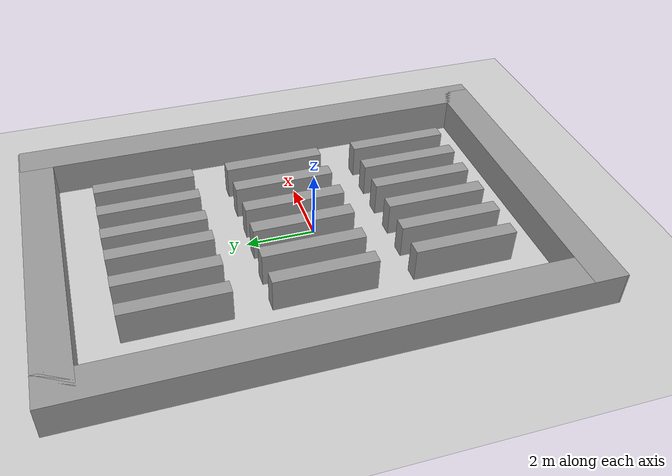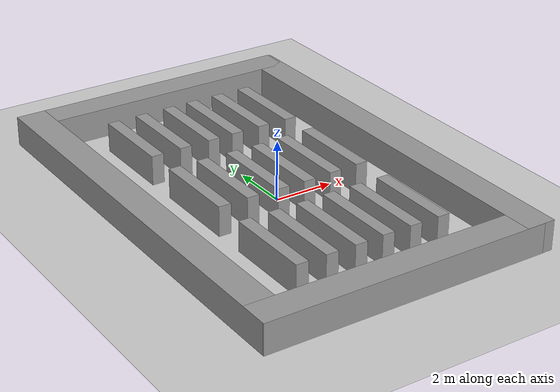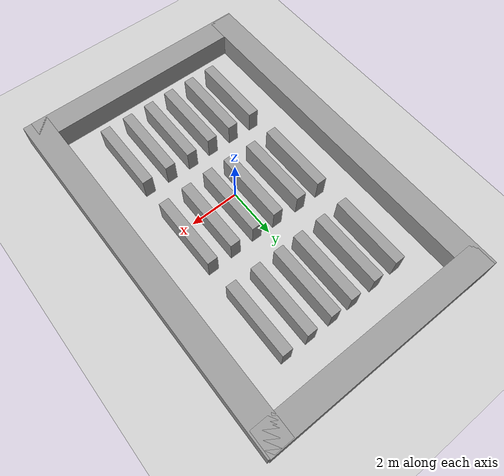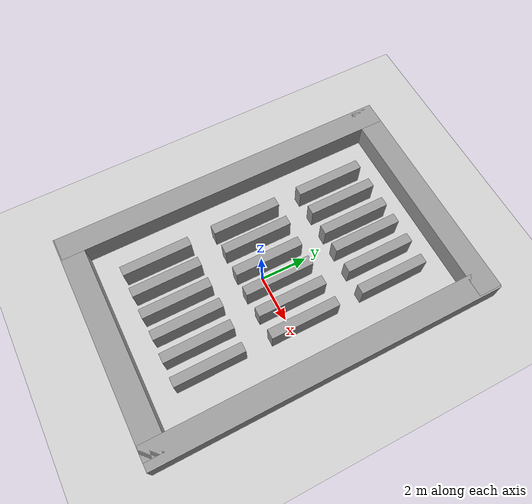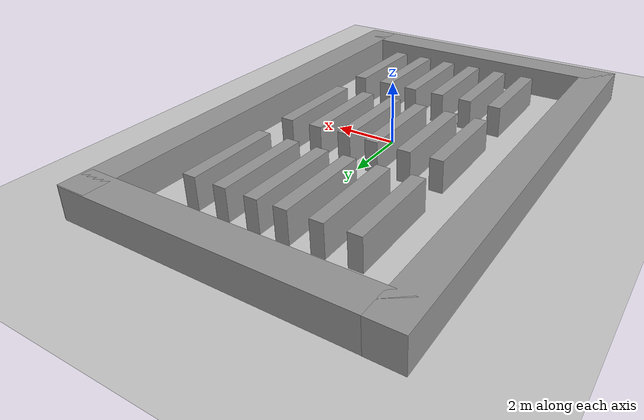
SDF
<sdf version="1.6">
 <world name="default">
  <light name="sun" type="directional">
   <pose>0 0 10 0 -0 0</pose>
   <diffuse>0.8 0.8 0.8 1</diffuse>
   <specular>0.2 0.2 0.2 1</specular>
   <attenuation>
    <range>1000</range>
    <constant>0.9</constant>
    <linear>0.01</linear>
    <quadratic>0.001</quadratic>
   </attenuation>
   <direction>-0.5 0.1 -0.9</direction>
  </light>
  <model name="ground_plane">
   <static>1</static>
   <link name="link">
    <collision name="collision">
     <geometry><plane><normal>0 0 1</normal><size>100 100</size></plane></geometry>
     <surface>
      <contact><collide_bitmask>65535</collide_bitmask></contact>
      <friction><ode><mu>100</mu><mu2>50</mu2></ode></friction>
     </surface>
    </collision>
    <visual name="visual">
     <cast_shadows>0</cast_shadows>
     <geometry><plane><normal>0 0 1</normal><size>100 100</size></plane></geometry>
     <material>
      <script><uri>file://media/materials/scripts/gazebo.material</uri><name>Gazebo/Grey</name></script>
     </material>
    </visual>
   </link>
  </model>
  <gravity>0 0 -9.8</gravity>
  <magnetic_field>6e-06 2.3e-05 -4.2e-05</magnetic_field>
  <atmosphere type="adiabatic"/>
  <physics name="default_physics" default="0" type="ode">
   <max_step_size>0.001</max_step_size>
   <real_time_factor>1</real_time_factor>
   <real_time_update_rate>1000</real_time_update_rate>
  </physics>
  <scene><ambient>0.4 0.4 0.4 1</ambient><background>0.7 0.7 0.7 1</background><shadows>1</shadows></scene>
  <audio><device>default</device></audio>
  <spherical_coordinates>
   <surface_model>EARTH_WGS84</surface_model>
   <latitude_deg>0</latitude_deg>
   <longitude_deg>0</longitude_deg>
   <elevation>0</elevation>
   <heading_deg>0</heading_deg>
  </spherical_coordinates>
  <model name="unit_box_clone">
   <pose>4.47856 0.511578 0.5 0 -0 0</pose>
   <link name="unit_box::link">
    <inertial>
     <mass>1</mass>
     <inertia>
      <ixx>0.166667</ixx>
      <ixy>0</ixy>
      <ixz>0</ixz>
      <iyy>0.166667</iyy>
      <iyz>0</iyz>
      <izz>0.166667</izz>
     </inertia>
    </inertial>
    <collision name="collision"><geometry><box><size>1 14.9332 1</size></box></geometry></collision>
    <visual name="visual">
     <geometry><box><size>1 14.9332 1</size></box></geometry>
     <material>
      <script><name>Gazebo/Grey</name><uri>file://media/materials/scripts/gazebo.material</uri></script>
     </material>
    </visual>
    <kinematic>1</kinematic>
   </link>
  </model>
  <model name="unit_box_clone_0">
   <pose>-0.204943 -6.46054 0.5 0 0 -1.57123</pose>
   <link name="unit_box::link">
    <inertial>
     <mass>1</mass>
     <inertia>
      <ixx>0.166667</ixx>
      <ixy>0</ixy>
      <ixz>0</ixz>
      <iyy>0.166667</iyy>
      <iyz>0</iyz>
      <izz>0.166667</izz>
     </inertia>
    </inertial>
    <collision name="collision"><geometry><box><size>1 9.65043 1</size></box></geometry></collision>
    <visual name="visual">
     <geometry><box><size>1 9.65043 1</size></box></geometry>
     <material>
      <script><name>Gazebo/Grey</name><uri>file://media/materials/scripts/gazebo.material</uri></script>
     </material>
    </visual>
    <kinematic>1</kinematic>
   </link>
  </model>
  <model name="unit_box_clone_0_clone">
   <pose>-0.016399 7.51137 0.5 0 0 -1.57123</pose>
   <link name="unit_box::link">
    <inertial>
     <mass>1</mass>
     <inertia>
      <ixx>0.166667</ixx>
      <ixy>0</ixy>
      <ixz>0</ixz>
      <iyy>0.166667</iyy>
      <iyz>0</iyz>
      <izz>0.166667</izz>
     </inertia>
    </inertial>
    <collision name="collision"><geometry><box><size>1 9.84822 1</size></box></geometry></collision>
    <visual name="visual">
     <geometry><box><size>1 9.84822 1</size></box></geometry>
     <material>
      <script><name>Gazebo/Grey</name><uri>file://media/materials/scripts/gazebo.material</uri></script>
     </material>
    </visual>
    <kinematic>1</kinematic>
   </link>
  </model>
  <light name="user_point_light_0" type="point">
   <pose>-0.069545 0.103003 1 0 -0 0</pose>
   <diffuse>0.5 0.5 0.5 1</diffuse>
   <specular>0.1 0.1 0.1 1</specular>
   <attenuation>
    <range>20</range>
    <constant>0.5</constant>
    <linear>0.01</linear>
    <quadratic>0.001</quadratic>
   </attenuation>
   <cast_shadows>0</cast_shadows>
   <direction>0 0 -1</direction>
  </light>
  <model name="unit_box_0_clone">
   <pose>-1.48432 4.47491 0.5 0 -0 0</pose>
   <link name="unit_box_0::link">
    <inertial>
     <mass>1</mass>
     <inertia>
      <ixx>0.166667</ixx>
      <ixy>0</ixy>
      <ixz>0</ixz>
      <iyy>0.166667</iyy>
      <iyz>0</iyz>
      <izz>0.166667</izz>
     </inertia>
    </inertial>
    <collision name="collision"><geometry><box><size>0.417415 2.94926 1</size></box></geometry></collision>
    <visual name="visual">
     <geometry><box><size>0.417415 2.94926 1</size></box></geometry>
     <material>
      <script><name>Gazebo/Grey</name><uri>file://media/materials/scripts/gazebo.material</uri></script>
     </material>
    </visual>
    <kinematic>1</kinematic>
   </link>
  </model>
  <model name="unit_box_0_clone_0">
   <pose>-0.436566 4.48288 0.5 0 -0 0</pose>
   <link name="unit_box_0::link">
    <inertial>
     <mass>1</mass>
     <inertia>
      <ixx>0.166667</ixx>
      <ixy>0</ixy>
      <ixz>0</ixz>
      <iyy>0.166667</iyy>
      <iyz>0</iyz>
      <izz>0.166667</izz>
     </inertia>
    </inertial>
    <collision name="collision"><geometry><box><size>0.417415 2.94926 1</size></box></geometry></collision>
    <visual name="visual">
     <geometry><box><size>0.417415 2.94926 1</size></box></geometry>
     <material>
      <script><name>Gazebo/Grey</name><uri>file://media/materials/scripts/gazebo.material</uri></script>
     </material>
    </visual>
    <kinematic>1</kinematic>
   </link>
  </model>
  <model name="unit_box_0_clone_1">
   <pose>0.463404 4.49446 0.5 0 -0 0</pose>
   <link name="unit_box_0::link">
    <inertial>
     <mass>1</mass>
     <inertia>
      <ixx>0.166667</ixx>
      <ixy>0</ixy>
      <ixz>0</ixz>
      <iyy>0.166667</iyy>
      <iyz>0</iyz>
      <izz>0.166667</izz>
     </inertia>
    </inertial>
    <collision name="collision"><geometry><box><size>0.417415 2.94926 1</size></box></geometry></collision>
    <visual name="visual">
     <geometry><box><size>0.417415 2.94926 1</size></box></geometry>
     <material>
      <script><name>Gazebo/Grey</name><uri>file://media/materials/scripts/gazebo.material</uri></script>
     </material>
    </visual>
    <kinematic>1</kinematic>
   </link>
  </model>
  <model name="unit_box_0_clone_2">
   <pose>1.47766 4.48987 0.5 0 -0 0</pose>
   <link name="unit_box_0::link">
    <inertial>
     <mass>1</mass>
     <inertia>
      <ixx>0.166667</ixx>
      <ixy>0</ixy>
      <ixz>0</ixz>
      <iyy>0.166667</iyy>
      <iyz>0</iyz>
      <izz>0.166667</izz>
     </inertia>
    </inertial>
    <collision name="collision"><geometry><box><size>0.417415 2.94926 1</size></box></geometry></collision>
    <visual name="visual">
     <geometry><box><size>0.417415 2.94926 1</size></box></geometry>
     <material>
      <script><name>Gazebo/Grey</name><uri>file://media/materials/scripts/gazebo.material</uri></script>
     </material>
    </visual>
    <kinematic>1</kinematic>
   </link>
  </model>
  <model name="unit_box_0_clone_3">
   <pose>2.52178 4.48688 0.5 0 -0 0</pose>
   <link name="unit_box_0::link">
    <inertial>
     <mass>1</mass>
     <inertia>
      <ixx>0.166667</ixx>
      <ixy>0</ixy>
      <ixz>0</ixz>
      <iyy>0.166667</iyy>
      <iyz>0</iyz>
      <izz>0.166667</izz>
     </inertia>
    </inertial>
    <collision name="collision"><geometry><box><size>0.417415 2.94926 1</size></box></geometry></collision>
    <visual name="visual">
     <geometry><box><size>0.417415 2.94926 1</size></box></geometry>
     <material>
      <script><name>Gazebo/Grey</name><uri>file://media/materials/scripts/gazebo.material</uri></script>
     </material>
    </visual>
    <kinematic>1</kinematic>
   </link>
  </model>
  <model name="unit_box_0_clone_3_clone">
   <pose>-2.48328 -3.51687 0.5 0 -0 0</pose>
   <link name="unit_box_0::link">
    <inertial>
     <mass>1</mass>
     <inertia>
      <ixx>0.166667</ixx>
      <ixy>0</ixy>
      <ixz>0</ixz>
      <iyy>0.166667</iyy>
      <iyz>0</iyz>
      <izz>0.166667</izz>
     </inertia>
    </inertial>
    <collision name="collision"><geometry><box><size>0.417415 2.94926 1</size></box></geometry></collision>
    <visual name="visual">
     <geometry><box><size>0.417415 2.94926 1</size></box></geometry>
     <material>
      <script><name>Gazebo/Grey</name><uri>file://media/materials/scripts/gazebo.material</uri></script>
     </material>
    </visual>
    <kinematic>1</kinematic>
   </link>
  </model>
  <model name="unit_box_0_clone_3_clone_0">
   <pose>-1.4736 -3.5228 0.5 0 -0 0</pose>
   <link name="unit_box_0::link">
    <inertial>
     <mass>1</mass>
     <inertia>
      <ixx>0.166667</ixx>
      <ixy>0</ixy>
      <ixz>0</ixz>
      <iyy>0.166667</iyy>
      <iyz>0</iyz>
      <izz>0.166667</izz>
     </inertia>
    </inertial>
    <collision name="collision"><geometry><box><size>0.417415 2.94926 1</size></box></geometry></collision>
    <visual name="visual">
     <geometry><box><size>0.417415 2.94926 1</size></box></geometry>
     <material>
      <script><name>Gazebo/Grey</name><uri>file://media/materials/scripts/gazebo.material</uri></script>
     </material>
    </visual>
    <kinematic>1</kinematic>
   </link>
  </model>
  <model name="unit_box_0_clone_3_clone_1">
   <pose>-0.477682 -3.52925 0.5 0 -0 0</pose>
   <link name="unit_box_0::link">
    <inertial>
     <mass>1</mass>
     <inertia>
      <ixx>0.166667</ixx>
      <ixy>0</ixy>
      <ixz>0</ixz>
      <iyy>0.166667</iyy>
      <iyz>0</iyz>
      <izz>0.166667</izz>
     </inertia>
    </inertial>
    <collision name="collision"><geometry><box><size>0.417415 2.94926 1</size></box></geometry></collision>
    <visual name="visual">
     <geometry><box><size>0.417415 2.94926 1</size></box></geometry>
     <material>
      <script><name>Gazebo/Grey</name><uri>file://media/materials/scripts/gazebo.material</uri></script>
     </material>
    </visual>
    <kinematic>1</kinematic>
   </link>
  </model>
  <model name="unit_box_0_clone_3_clone_2">
   <pose>0.503605 -3.49643 0.5 0 -0 0</pose>
   <link name="unit_box_0::link">
    <inertial>
     <mass>1</mass>
     <inertia>
      <ixx>0.166667</ixx>
      <ixy>0</ixy>
      <ixz>0</ixz>
      <iyy>0.166667</iyy>
      <iyz>0</iyz>
      <izz>0.166667</izz>
     </inertia>
    </inertial>
    <collision name="collision"><geometry><box><size>0.417415 2.94926 1</size></box></geometry></collision>
    <visual name="visual">
     <geometry><box><size>0.417415 2.94926 1</size></box></geometry>
     <material>
      <script><name>Gazebo/Grey</name><uri>file://media/materials/scripts/gazebo.material</uri></script>
     </material>
    </visual>
    <kinematic>1</kinematic>
   </link>
  </model>
  <model name="unit_box_0_clone_3_clone_3">
   <pose>1.48547 -3.50331 0.5 0 -0 0</pose>
   <link name="unit_box_0::link">
    <inertial>
     <mass>1</mass>
     <inertia>
      <ixx>0.166667</ixx>
      <ixy>0</ixy>
      <ixz>0</ixz>
      <iyy>0.166667</iyy>
      <iyz>0</iyz>
      <izz>0.166667</izz>
     </inertia>
    </inertial>
    <collision name="collision"><geometry><box><size>0.417415 2.94926 1</size></box></geometry></collision>
    <visual name="visual">
     <geometry><box><size>0.417415 2.94926 1</size></box></geometry>
     <material>
      <script><name>Gazebo/Grey</name><uri>file://media/materials/scripts/gazebo.material</uri></script>
     </material>
    </visual>
    <kinematic>1</kinematic>
   </link>
  </model>
  <model name="unit_box_0_clone_3_clone_4">
   <pose>2.49332 -3.50934 0.5 0 -0 0</pose>
   <link name="unit_box_0::link">
    <inertial>
     <mass>1</mass>
     <inertia>
      <ixx>0.166667</ixx>
      <ixy>0</ixy>
      <ixz>0</ixz>
      <iyy>0.166667</iyy>
      <iyz>0</iyz>
      <izz>0.166667</izz>
     </inertia>
    </inertial>
    <collision name="collision"><geometry><box><size>0.417415 2.94926 1</size></box></geometry></collision>
    <visual name="visual">
     <geometry><box><size>0.417415 2.94926 1</size></box></geometry>
     <material>
      <script><name>Gazebo/Grey</name><uri>file://media/materials/scripts/gazebo.material</uri></script>
     </material>
    </visual>
    <kinematic>1</kinematic>
   </link>
  </model>
  <model name="unit_box_0_clone_4">
   <pose>-2.50337 0.479669 0.5 0 -0 0</pose>
   <link name="unit_box_0::link">
    <inertial>
     <mass>1</mass>
     <inertia>
      <ixx>0.166667</ixx>
      <ixy>0</ixy>
      <ixz>0</ixz>
      <iyy>0.166667</iyy>
      <iyz>0</iyz>
      <izz>0.166667</izz>
     </inertia>
    </inertial>
    <collision name="collision"><geometry><box><size>0.417415 2.94926 1</size></box></geometry></collision>
    <visual name="visual">
     <geometry><box><size>0.417415 2.94926 1</size></box></geometry>
     <material>
      <script><name>Gazebo/Grey</name><uri>file://media/materials/scripts/gazebo.material</uri></script>
     </material>
    </visual>
    <kinematic>1</kinematic>
   </link>
  </model>
  <model name="unit_box_0_clone_4_clone">
   <pose>-1.50242 0.493868 0.5 0 -0 0</pose>
   <link name="unit_box_0::link">
    <inertial>
     <mass>1</mass>
     <inertia>
      <ixx>0.166667</ixx>
      <ixy>0</ixy>
      <ixz>0</ixz>
      <iyy>0.166667</iyy>
      <iyz>0</iyz>
      <izz>0.166667</izz>
     </inertia>
    </inertial>
    <collision name="collision"><geometry><box><size>0.417415 2.94926 1</size></box></geometry></collision>
    <visual name="visual">
     <geometry><box><size>0.417415 2.94926 1</size></box></geometry>
     <material>
      <script><name>Gazebo/Grey</name><uri>file://media/materials/scripts/gazebo.material</uri></script>
     </material>
    </visual>
    <kinematic>1</kinematic>
   </link>
  </model>
  <model name="unit_box_0_clone_4_clone_0">
   <pose>-0.432635 0.46236 0.5 0 -0 0</pose>
   <link name="unit_box_0::link">
    <inertial>
     <mass>1</mass>
     <inertia>
      <ixx>0.166667</ixx>
      <ixy>0</ixy>
      <ixz>0</ixz>
      <iyy>0.166667</iyy>
      <iyz>0</iyz>
      <izz>0.166667</izz>
     </inertia>
    </inertial>
    <collision name="collision"><geometry><box><size>0.417415 2.94926 1</size></box></geometry></collision>
    <visual name="visual">
     <geometry><box><size>0.417415 2.94926 1</size></box></geometry>
     <material>
      <script><name>Gazebo/Grey</name><uri>file://media/materials/scripts/gazebo.material</uri></script>
     </material>
    </visual>
    <kinematic>1</kinematic>
   </link>
  </model>
  <model name="unit_box_0_clone_4_clone_1">
   <pose>0.510426 0.445869 0.5 0 -0 0</pose>
   <link name="unit_box_0::link">
    <inertial>
     <mass>1</mass>
     <inertia>
      <ixx>0.166667</ixx>
      <ixy>0</ixy>
      <ixz>0</ixz>
      <iyy>0.166667</iyy>
      <iyz>0</iyz>
      <izz>0.166667</izz>
     </inertia>
    </inertial>
    <collision name="collision"><geometry><box><size>0.417415 2.94926 1</size></box></geometry></collision>
    <visual name="visual">
     <geometry><box><size>0.417415 2.94926 1</size></box></geometry>
     <material>
      <script><name>Gazebo/Grey</name><uri>file://media/materials/scripts/gazebo.material</uri></script>
     </material>
    </visual>
    <kinematic>1</kinematic>
   </link>
  </model>
  <model name="unit_box_0_clone_4_clone_2">
   <pose>1.50892 0.488823 0.5 0 -0 0</pose>
   <link name="unit_box_0::link">
    <inertial>
     <mass>1</mass>
     <inertia>
      <ixx>0.166667</ixx>
      <ixy>0</ixy>
      <ixz>0</ixz>
      <iyy>0.166667</iyy>
      <iyz>0</iyz>
      <izz>0.166667</izz>
     </inertia>
    </inertial>
    <collision name="collision"><geometry><box><size>0.417415 2.94926 1</size></box></geometry></collision>
    <visual name="visual">
     <geometry><box><size>0.417415 2.94926 1</size></box></geometry>
     <material>
      <script><name>Gazebo/Grey</name><uri>file://media/materials/scripts/gazebo.material</uri></script>
     </material>
    </visual>
    <kinematic>1</kinematic>
   </link>
  </model>
  <model name="unit_box_0_clone_4_clone_3">
   <pose>2.51734 0.522517 0.5 0 -0 0</pose>
   <link name="unit_box_0::link">
    <inertial>
     <mass>1</mass>
     <inertia>
      <ixx>0.166667</ixx>
      <ixy>0</ixy>
      <ixz>0</ixz>
      <iyy>0.166667</iyy>
      <iyz>0</iyz>
      <izz>0.166667</izz>
     </inertia>
    </inertial>
    <collision name="collision"><geometry><box><size>0.417415 2.94926 1</size></box></geometry></collision>
    <visual name="visual">
     <geometry><box><size>0.417415 2.94926 1</size></box></geometry>
     <material>
      <script><name>Gazebo/Grey</name><uri>file://media/materials/scripts/gazebo.material</uri></script>
     </material>
    </visual>
    <kinematic>1</kinematic>
   </link>
  </model>
  <light name="user_point_light_1" type="point">
   <pose>-0.042981 -6.4976 1 0 -0 0</pose>
   <diffuse>0.5 0.5 0.5 1</diffuse>
   <specular>0.1 0.1 0.1 1</specular>
   <attenuation>
    <range>20</range>
    <constant>0.5</constant>
    <linear>0.01</linear>
    <quadratic>0.001</quadratic>
   </attenuation>
   <cast_shadows>0</cast_shadows>
   <direction>0 0 -1</direction>
  </light>
  <light name="user_point_light_2" type="point">
   <pose>0.027502 7.59125 1 0 -0 0</pose>
   <diffuse>0.5 0.5 0.5 1</diffuse>
   <specular>0.1 0.1 0.1 1</specular>
   <attenuation>
    <range>20</range>
    <constant>0.5</constant>
    <linear>0.01</linear>
    <quadratic>0.001</quadratic>
   </attenuation>
   <cast_shadows>0</cast_shadows>
   <direction>0 0 -1</direction>
  </light>
  <model name="unit_box_0_clone_clone">
   <pose>-2.5241 4.45706 0.5 0 -0 0</pose>
   <link name="unit_box_0::link">
    <inertial>
     <mass>1</mass>
     <inertia>
      <ixx>0.166667</ixx>
      <ixy>0</ixy>
      <ixz>0</ixz>
      <iyy>0.166667</iyy>
      <iyz>0</iyz>
      <izz>0.166667</izz>
     </inertia>
    </inertial>
    <collision name="collision"><geometry><box><size>0.417415 2.94926 1</size></box></geometry></collision>
    <visual name="visual">
     <geometry><box><size>0.417415 2.94926 1</size></box></geometry>
     <material>
      <script><name>Gazebo/Grey</name><uri>file://media/materials/scripts/gazebo.material</uri></script>
     </material>
    </visual>
    <kinematic>1</kinematic>
   </link>
  </model>
  <model name="unit_box_clone_clone">
   <pose>-4.5305 0.550369 0.5 0 -0 0</pose>
   <link name="unit_box::link">
    <inertial>
     <mass>1</mass>
     <inertia>
      <ixx>0.166667</ixx>
      <ixy>0</ixy>
      <ixz>0</ixz>
      <iyy>0.166667</iyy>
      <iyz>0</iyz>
      <izz>0.166667</izz>
     </inertia>
    </inertial>
    <collision name="collision"><geometry><box><size>1 14.9332 1</size></box></geometry></collision>
    <visual name="visual">
     <geometry><box><size>1 14.9332 1</size></box></geometry>
     <material>
      <script><name>Gazebo/Grey</name><uri>file://media/materials/scripts/gazebo.material</uri></script>
     </material>
    </visual>
    <kinematic>1</kinematic>
   </link>
  </model>
 </world>
</sdf>
